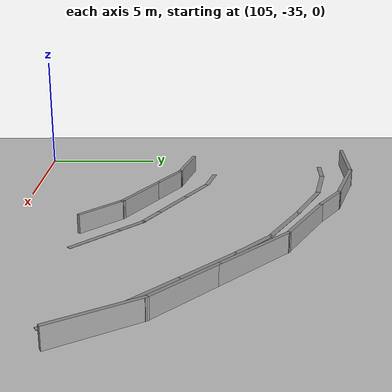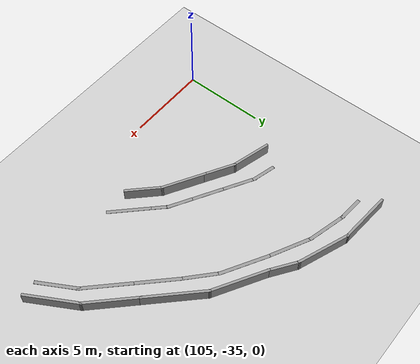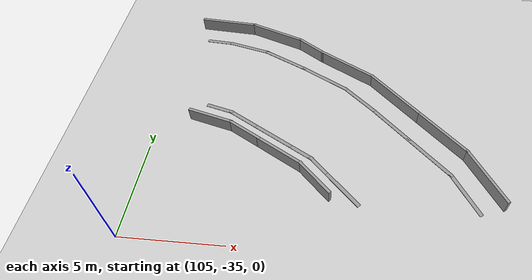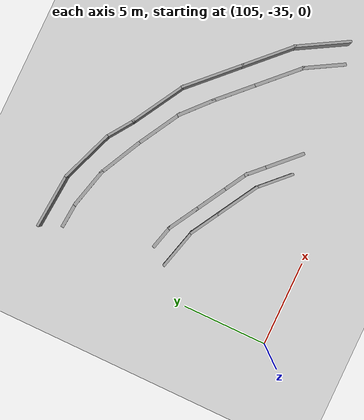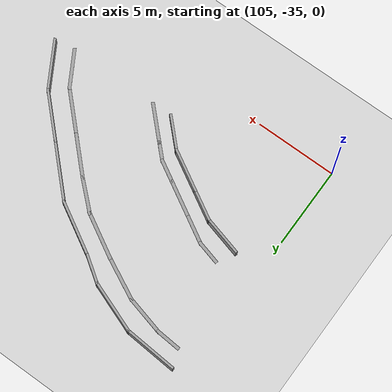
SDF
<sdf version="1.6">
 <world name="default">
  <model name="ground_plane">
   <static>1</static>
   <link name="link">
    <collision name="collision">
     <geometry><plane><normal>0 0 1</normal><size>100 100</size></plane></geometry>
     <surface>
      <contact><collide_bitmask>65535</collide_bitmask></contact>
      <friction><ode><mu>100</mu><mu2>50</mu2></ode></friction>
     </surface>
    </collision>
    <visual name="visual">
     <cast_shadows>0</cast_shadows>
     <geometry><plane><normal>0 0 1</normal><size>100 100</size></plane></geometry>
     <material>
      <script><uri>file://media/materials/scripts/gazebo.material</uri><name>Gazebo/Grey</name></script>
     </material>
    </visual>
   </link>
  </model>
  <model name="GercekDuvarSeritKoyu1">
   <link name="Wall_219">
    <pose>-23.1259 53.6629 0 0 0 -2.35586</pose>
    <inertial>
     <mass>1</mass>
     <inertia><ixx>1</ixx><ixy>0</ixy><ixz>0</ixz><iyy>1</iyy><iyz>0</iyz><izz>1</izz></inertia>
    </inertial>
    <visual name="Wall_219_Visual">
     <pose>0 0 0.375 0 -0 0</pose>
     <geometry><box><size>2.25 0.15 0.75</size></box></geometry>
     <material>
      <script><uri>file://media/materials/scripts/gazebo.material</uri><name>Gazebo/Grey</name></script>
      <ambient>0.5 0.5 0.5 1</ambient>
      <shader type="pixel"><normal_map>__default__</normal_map></shader>
      <diffuse>0.7 0.7 0.7 1</diffuse>
      <specular>0.01 0.01 0.01 1</specular>
      <emissive>0 0 0 1</emissive>
     </material>
     <meta><layer>0</layer></meta>
    </visual>
    <collision name="Wall_219_Collision">
     <pose>0 0 0.375 0 -0 0</pose>
     <geometry><box><size>2.25 0.15 0.75</size></box></geometry>
     <surface>
      <friction>
       <ode><mu>1</mu><mu2>1</mu2><fdir1>0 0 0</fdir1><slip1>0</slip1><slip2>0</slip2></ode>
       <torsional>
        <coefficient>1</coefficient>
        <patch_radius>0</patch_radius>
        <surface_radius>0</surface_radius>
        <use_patch_radius>1</use_patch_radius>
        <ode><slip>0</slip></ode>
       </torsional>
      </friction>
      <bounce><restitution_coefficient>0</restitution_coefficient><threshold>1e+06</threshold></bounce>
      <contact>
       <collide_without_contact>0</collide_without_contact>
       <collide_without_contact_bitmask>1</collide_without_contact_bitmask>
       <collide_bitmask>1</collide_bitmask>
       <ode>
        <soft_cfm>0</soft_cfm>
        <soft_erp>0.2</soft_erp>
        <kp>1e+13</kp>
        <kd>1</kd>
        <max_vel>0.01</max_vel>
        <min_depth>0</min_depth>
       </ode>
       <bullet>
        <split_impulse>1</split_impulse>
        <split_impulse_penetration_threshold>-0.01</split_impulse_penetration_threshold>
        <soft_cfm>0</soft_cfm>
        <soft_erp>0.2</soft_erp>
        <kp>1e+13</kp>
        <kd>1</kd>
       </bullet>
      </contact>
     </surface>
    </collision>
   </link>
   <link name="Wall_220">
    <pose>-24.5179 51.7949 0 0 0 -2.09452</pose>
    <inertial>
     <mass>1</mass>
     <inertia><ixx>1</ixx><ixy>0</ixy><ixz>0</ixz><iyy>1</iyy><iyz>0</iyz><izz>1</izz></inertia>
    </inertial>
    <visual name="Wall_220_Visual">
     <pose>0 0 0.375 0 -0 0</pose>
     <geometry><box><size>2.75 0.15 0.75</size></box></geometry>
     <material>
      <script><uri>file://media/materials/scripts/gazebo.material</uri><name>Gazebo/Grey</name></script>
      <ambient>0.5 0.5 0.5 1</ambient>
      <shader type="pixel"><normal_map>__default__</normal_map></shader>
      <diffuse>0.7 0.7 0.7 1</diffuse>
      <specular>0.01 0.01 0.01 1</specular>
      <emissive>0 0 0 1</emissive>
     </material>
     <meta><layer>0</layer></meta>
    </visual>
    <collision name="Wall_220_Collision">
     <pose>0 0 0.375 0 -0 0</pose>
     <geometry><box><size>2.75 0.15 0.75</size></box></geometry>
     <surface>
      <friction>
       <ode><mu>1</mu><mu2>1</mu2><fdir1>0 0 0</fdir1><slip1>0</slip1><slip2>0</slip2></ode>
       <torsional>
        <coefficient>1</coefficient>
        <patch_radius>0</patch_radius>
        <surface_radius>0</surface_radius>
        <use_patch_radius>1</use_patch_radius>
        <ode><slip>0</slip></ode>
       </torsional>
      </friction>
      <bounce><restitution_coefficient>0</restitution_coefficient><threshold>1e+06</threshold></bounce>
      <contact>
       <collide_without_contact>0</collide_without_contact>
       <collide_without_contact_bitmask>1</collide_without_contact_bitmask>
       <collide_bitmask>1</collide_bitmask>
       <ode>
        <soft_cfm>0</soft_cfm>
        <soft_erp>0.2</soft_erp>
        <kp>1e+13</kp>
        <kd>1</kd>
        <max_vel>0.01</max_vel>
        <min_depth>0</min_depth>
       </ode>
       <bullet>
        <split_impulse>1</split_impulse>
        <split_impulse_penetration_threshold>-0.01</split_impulse_penetration_threshold>
        <soft_cfm>0</soft_cfm>
        <soft_erp>0.2</soft_erp>
        <kp>1e+13</kp>
        <kd>1</kd>
       </bullet>
      </contact>
     </surface>
    </collision>
   </link>
   <link name="Wall_222">
    <pose>-25.6304 49.8684 0 0 0 -2.09443</pose>
    <inertial>
     <mass>1</mass>
     <inertia><ixx>1</ixx><ixy>0</ixy><ixz>0</ixz><iyy>1</iyy><iyz>0</iyz><izz>1</izz></inertia>
    </inertial>
    <visual name="Wall_222_Visual">
     <pose>0 0 0.375 0 -0 0</pose>
     <geometry><box><size>2 0.15 0.75</size></box></geometry>
     <material>
      <script><uri>file://media/materials/scripts/gazebo.material</uri><name>Gazebo/Grey</name></script>
      <ambient>0.5 0.5 0.5 1</ambient>
      <shader type="pixel"><normal_map>__default__</normal_map></shader>
      <diffuse>0.7 0.7 0.7 1</diffuse>
      <specular>0.01 0.01 0.01 1</specular>
      <emissive>0 0 0 1</emissive>
     </material>
     <meta><layer>0</layer></meta>
    </visual>
    <collision name="Wall_222_Collision">
     <pose>0 0 0.375 0 -0 0</pose>
     <geometry><box><size>2 0.15 0.75</size></box></geometry>
     <surface>
      <friction>
       <ode><mu>1</mu><mu2>1</mu2><fdir1>0 0 0</fdir1><slip1>0</slip1><slip2>0</slip2></ode>
       <torsional>
        <coefficient>1</coefficient>
        <patch_radius>0</patch_radius>
        <surface_radius>0</surface_radius>
        <use_patch_radius>1</use_patch_radius>
        <ode><slip>0</slip></ode>
       </torsional>
      </friction>
      <bounce><restitution_coefficient>0</restitution_coefficient><threshold>1e+06</threshold></bounce>
      <contact>
       <collide_without_contact>0</collide_without_contact>
       <collide_without_contact_bitmask>1</collide_without_contact_bitmask>
       <collide_bitmask>1</collide_bitmask>
       <ode>
        <soft_cfm>0</soft_cfm>
        <soft_erp>0.2</soft_erp>
        <kp>1e+13</kp>
        <kd>1</kd>
        <max_vel>0.01</max_vel>
        <min_depth>0</min_depth>
       </ode>
       <bullet>
        <split_impulse>1</split_impulse>
        <split_impulse_penetration_threshold>-0.01</split_impulse_penetration_threshold>
        <soft_cfm>0</soft_cfm>
        <soft_erp>0.2</soft_erp>
        <kp>1e+13</kp>
        <kd>1</kd>
       </bullet>
      </contact>
     </surface>
    </collision>
   </link>
   <link name="Wall_223">
    <pose>-26.3974 47.9324 0 0 0 -1.83291</pose>
    <inertial>
     <mass>1</mass>
     <inertia><ixx>1</ixx><ixy>0</ixy><ixz>0</ixz><iyy>1</iyy><iyz>0</iyz><izz>1</izz></inertia>
    </inertial>
    <visual name="Wall_223_Visual">
     <pose>0 0 0.375 0 -0 0</pose>
     <geometry><box><size>2.5 0.15 0.75</size></box></geometry>
     <material>
      <script><uri>file://media/materials/scripts/gazebo.material</uri><name>Gazebo/Grey</name></script>
      <ambient>0.5 0.5 0.5 1</ambient>
      <shader type="pixel"><normal_map>__default__</normal_map></shader>
      <diffuse>0.7 0.7 0.7 1</diffuse>
      <specular>0.01 0.01 0.01 1</specular>
      <emissive>0 0 0 1</emissive>
     </material>
     <meta><layer>0</layer></meta>
    </visual>
    <collision name="Wall_223_Collision">
     <pose>0 0 0.375 0 -0 0</pose>
     <geometry><box><size>2.5 0.15 0.75</size></box></geometry>
     <surface>
      <friction>
       <ode><mu>1</mu><mu2>1</mu2><fdir1>0 0 0</fdir1><slip1>0</slip1><slip2>0</slip2></ode>
       <torsional>
        <coefficient>1</coefficient>
        <patch_radius>0</patch_radius>
        <surface_radius>0</surface_radius>
        <use_patch_radius>1</use_patch_radius>
        <ode><slip>0</slip></ode>
       </torsional>
      </friction>
      <bounce><restitution_coefficient>0</restitution_coefficient><threshold>1e+06</threshold></bounce>
      <contact>
       <collide_without_contact>0</collide_without_contact>
       <collide_without_contact_bitmask>1</collide_without_contact_bitmask>
       <collide_bitmask>1</collide_bitmask>
       <ode>
        <soft_cfm>0</soft_cfm>
        <soft_erp>0.2</soft_erp>
        <kp>1e+13</kp>
        <kd>1</kd>
        <max_vel>0.01</max_vel>
        <min_depth>0</min_depth>
       </ode>
       <bullet>
        <split_impulse>1</split_impulse>
        <split_impulse_penetration_threshold>-0.01</split_impulse_penetration_threshold>
        <soft_cfm>0</soft_cfm>
        <soft_erp>0.2</soft_erp>
        <kp>1e+13</kp>
        <kd>1</kd>
       </bullet>
      </contact>
     </surface>
    </collision>
   </link>
   <link name="Wall_298">
    <pose>-23.2694 60.8379 0 0 0 -2.61796</pose>
    <visual name="Wall_298_Visual">
     <pose>0 0 0.005 0 -0 0</pose>
     <geometry><box><size>2.55018 0.2 0.01</size></box></geometry>
     <material>
      <script><uri>file://media/materials/scripts/gazebo.material</uri><name>Gazebo/Grey</name></script>
      <ambient>1 1 1 1</ambient>
      <shader type="pixel"/>
     </material>
     <meta><layer>0</layer></meta>
    </visual>
    <collision name="Wall_298_Collision">
     <pose>0 0 0.005 0 -0 0</pose>
     <geometry><box><size>2.55018 0.2 0.01</size></box></geometry>
     <surface>
      <friction>
       <ode><mu>1</mu><mu2>1</mu2><fdir1>0 0 0</fdir1><slip1>0</slip1><slip2>0</slip2></ode>
       <torsional>
        <coefficient>1</coefficient>
        <patch_radius>0</patch_radius>
        <surface_radius>0</surface_radius>
        <use_patch_radius>1</use_patch_radius>
        <ode><slip>0</slip></ode>
       </torsional>
      </friction>
      <bounce><restitution_coefficient>0</restitution_coefficient><threshold>1e+06</threshold></bounce>
      <contact>
       <collide_without_contact>0</collide_without_contact>
       <collide_without_contact_bitmask>1</collide_without_contact_bitmask>
       <collide_bitmask>1</collide_bitmask>
       <ode>
        <soft_cfm>0</soft_cfm>
        <soft_erp>0.2</soft_erp>
        <kp>1e+13</kp>
        <kd>1</kd>
        <max_vel>0.01</max_vel>
        <min_depth>0</min_depth>
       </ode>
       <bullet>
        <split_impulse>1</split_impulse>
        <split_impulse_penetration_threshold>-0.01</split_impulse_penetration_threshold>
        <soft_cfm>0</soft_cfm>
        <soft_erp>0.2</soft_erp>
        <kp>1e+13</kp>
        <kd>1</kd>
       </bullet>
      </contact>
     </surface>
    </collision>
   </link>
   <link name="Wall_299">
    <pose>-25.2949 59.2429 0 0 0 -2.35644</pose>
    <visual name="Wall_299_Visual">
     <pose>0 0 0.005 0 -0 0</pose>
     <geometry><box><size>3.05027 0.2 0.01</size></box></geometry>
     <material>
      <script><uri>file://media/materials/scripts/gazebo.material</uri><name>Gazebo/Grey</name></script>
      <ambient>1 1 1 1</ambient>
      <shader type="pixel"/>
     </material>
     <meta><layer>0</layer></meta>
    </visual>
    <collision name="Wall_299_Collision">
     <pose>0 0 0.005 0 -0 0</pose>
     <geometry><box><size>3.05027 0.2 0.01</size></box></geometry>
     <surface>
      <friction>
       <ode><mu>1</mu><mu2>1</mu2><fdir1>0 0 0</fdir1><slip1>0</slip1><slip2>0</slip2></ode>
       <torsional>
        <coefficient>1</coefficient>
        <patch_radius>0</patch_radius>
        <surface_radius>0</surface_radius>
        <use_patch_radius>1</use_patch_radius>
        <ode><slip>0</slip></ode>
       </torsional>
      </friction>
      <bounce><restitution_coefficient>0</restitution_coefficient><threshold>1e+06</threshold></bounce>
      <contact>
       <collide_without_contact>0</collide_without_contact>
       <collide_without_contact_bitmask>1</collide_without_contact_bitmask>
       <collide_bitmask>1</collide_bitmask>
       <ode>
        <soft_cfm>0</soft_cfm>
        <soft_erp>0.2</soft_erp>
        <kp>1e+13</kp>
        <kd>1</kd>
        <max_vel>0.01</max_vel>
        <min_depth>0</min_depth>
       </ode>
       <bullet>
        <split_impulse>1</split_impulse>
        <split_impulse_penetration_threshold>-0.01</split_impulse_penetration_threshold>
        <soft_cfm>0</soft_cfm>
        <soft_erp>0.2</soft_erp>
        <kp>1e+13</kp>
        <kd>1</kd>
       </bullet>
      </contact>
     </surface>
    </collision>
   </link>
   <link name="Wall_301">
    <pose>-27.2219 57.3159 0 0 0 -2.35592</pose>
    <visual name="Wall_301_Visual">
     <pose>0 0 0.005 0 -0 0</pose>
     <geometry><box><size>2.79992 0.2 0.01</size></box></geometry>
     <material>
      <script><uri>file://media/materials/scripts/gazebo.material</uri><name>Gazebo/Grey</name></script>
      <ambient>1 1 1 1</ambient>
      <shader type="pixel"/>
     </material>
     <meta><layer>0</layer></meta>
    </visual>
    <collision name="Wall_301_Collision">
     <pose>0 0 0.005 0 -0 0</pose>
     <geometry><box><size>2.79992 0.2 0.01</size></box></geometry>
     <surface>
      <friction>
       <ode><mu>1</mu><mu2>1</mu2><fdir1>0 0 0</fdir1><slip1>0</slip1><slip2>0</slip2></ode>
       <torsional>
        <coefficient>1</coefficient>
        <patch_radius>0</patch_radius>
        <surface_radius>0</surface_radius>
        <use_patch_radius>1</use_patch_radius>
        <ode><slip>0</slip></ode>
       </torsional>
      </friction>
      <bounce><restitution_coefficient>0</restitution_coefficient><threshold>1e+06</threshold></bounce>
      <contact>
       <collide_without_contact>0</collide_without_contact>
       <collide_without_contact_bitmask>1</collide_without_contact_bitmask>
       <collide_bitmask>1</collide_bitmask>
       <ode>
        <soft_cfm>0</soft_cfm>
        <soft_erp>0.2</soft_erp>
        <kp>1e+13</kp>
        <kd>1</kd>
        <max_vel>0.01</max_vel>
        <min_depth>0</min_depth>
       </ode>
       <bullet>
        <split_impulse>1</split_impulse>
        <split_impulse_penetration_threshold>-0.01</split_impulse_penetration_threshold>
        <soft_cfm>0</soft_cfm>
        <soft_erp>0.2</soft_erp>
        <kp>1e+13</kp>
        <kd>1</kd>
       </bullet>
      </contact>
     </surface>
    </collision>
   </link>
   <link name="Wall_302">
    <pose>-28.8624 55.6029 0 0 0 -2.3087</pose>
    <visual name="Wall_302_Visual">
     <pose>0 0 0.005 0 -0 0</pose>
     <geometry><box><size>2.34524 0.2 0.01</size></box></geometry>
     <material>
      <script><uri>file://media/materials/scripts/gazebo.material</uri><name>Gazebo/Grey</name></script>
      <ambient>1 1 1 1</ambient>
      <shader type="pixel"/>
     </material>
     <meta><layer>0</layer></meta>
    </visual>
    <collision name="Wall_302_Collision">
     <pose>0 0 0.005 0 -0 0</pose>
     <geometry><box><size>2.34524 0.2 0.01</size></box></geometry>
     <surface>
      <friction>
       <ode><mu>1</mu><mu2>1</mu2><fdir1>0 0 0</fdir1><slip1>0</slip1><slip2>0</slip2></ode>
       <torsional>
        <coefficient>1</coefficient>
        <patch_radius>0</patch_radius>
        <surface_radius>0</surface_radius>
        <use_patch_radius>1</use_patch_radius>
        <ode><slip>0</slip></ode>
       </torsional>
      </friction>
      <bounce><restitution_coefficient>0</restitution_coefficient><threshold>1e+06</threshold></bounce>
      <contact>
       <collide_without_contact>0</collide_without_contact>
       <collide_without_contact_bitmask>1</collide_without_contact_bitmask>
       <collide_bitmask>1</collide_bitmask>
       <ode>
        <soft_cfm>0</soft_cfm>
        <soft_erp>0.2</soft_erp>
        <kp>1e+13</kp>
        <kd>1</kd>
        <max_vel>0.01</max_vel>
        <min_depth>0</min_depth>
       </ode>
       <bullet>
        <split_impulse>1</split_impulse>
        <split_impulse_penetration_threshold>-0.01</split_impulse_penetration_threshold>
        <soft_cfm>0</soft_cfm>
        <soft_erp>0.2</soft_erp>
        <kp>1e+13</kp>
        <kd>1</kd>
       </bullet>
      </contact>
     </surface>
    </collision>
   </link>
   <link name="Wall_303">
    <pose>-30.2849 53.5754 0 0 0 -2.08741</pose>
    <visual name="Wall_303_Visual">
     <pose>0 0 0.005 0 -0 0</pose>
     <geometry><box><size>3.03876 0.2 0.01</size></box></geometry>
     <material>
      <script><uri>file://media/materials/scripts/gazebo.material</uri><name>Gazebo/Grey</name></script>
      <ambient>1 1 1 1</ambient>
      <shader type="pixel"/>
     </material>
     <meta><layer>0</layer></meta>
    </visual>
    <collision name="Wall_303_Collision">
     <pose>0 0 0.005 0 -0 0</pose>
     <geometry><box><size>3.03876 0.2 0.01</size></box></geometry>
     <surface>
      <friction>
       <ode><mu>1</mu><mu2>1</mu2><fdir1>0 0 0</fdir1><slip1>0</slip1><slip2>0</slip2></ode>
       <torsional>
        <coefficient>1</coefficient>
        <patch_radius>0</patch_radius>
        <surface_radius>0</surface_radius>
        <use_patch_radius>1</use_patch_radius>
        <ode><slip>0</slip></ode>
       </torsional>
      </friction>
      <bounce><restitution_coefficient>0</restitution_coefficient><threshold>1e+06</threshold></bounce>
      <contact>
       <collide_without_contact>0</collide_without_contact>
       <collide_without_contact_bitmask>1</collide_without_contact_bitmask>
       <collide_bitmask>1</collide_bitmask>
       <ode>
        <soft_cfm>0</soft_cfm>
        <soft_erp>0.2</soft_erp>
        <kp>1e+13</kp>
        <kd>1</kd>
        <max_vel>0.01</max_vel>
        <min_depth>0</min_depth>
       </ode>
       <bullet>
        <split_impulse>1</split_impulse>
        <split_impulse_penetration_threshold>-0.01</split_impulse_penetration_threshold>
        <soft_cfm>0</soft_cfm>
        <soft_erp>0.2</soft_erp>
        <kp>1e+13</kp>
        <kd>1</kd>
       </bullet>
      </contact>
     </surface>
    </collision>
   </link>
   <link name="Wall_304">
    <pose>-31.5824 51.1524 0 0 0 -2.03579</pose>
    <visual name="Wall_304_Visual">
     <pose>0 0 0.005 0 -0 0</pose>
     <geometry><box><size>2.86057 0.2 0.01</size></box></geometry>
     <material>
      <script><uri>file://media/materials/scripts/gazebo.material</uri><name>Gazebo/Grey</name></script>
      <ambient>1 1 1 1</ambient>
      <shader type="pixel"/>
     </material>
     <meta><layer>0</layer></meta>
    </visual>
    <collision name="Wall_304_Collision">
     <pose>0 0 0.005 0 -0 0</pose>
     <geometry><box><size>2.86057 0.2 0.01</size></box></geometry>
     <surface>
      <friction>
       <ode><mu>1</mu><mu2>1</mu2><fdir1>0 0 0</fdir1><slip1>0</slip1><slip2>0</slip2></ode>
       <torsional>
        <coefficient>1</coefficient>
        <patch_radius>0</patch_radius>
        <surface_radius>0</surface_radius>
        <use_patch_radius>1</use_patch_radius>
        <ode><slip>0</slip></ode>
       </torsional>
      </friction>
      <bounce><restitution_coefficient>0</restitution_coefficient><threshold>1e+06</threshold></bounce>
      <contact>
       <collide_without_contact>0</collide_without_contact>
       <collide_without_contact_bitmask>1</collide_without_contact_bitmask>
       <collide_bitmask>1</collide_bitmask>
       <ode>
        <soft_cfm>0</soft_cfm>
        <soft_erp>0.2</soft_erp>
        <kp>1e+13</kp>
        <kd>1</kd>
        <max_vel>0.01</max_vel>
        <min_depth>0</min_depth>
       </ode>
       <bullet>
        <split_impulse>1</split_impulse>
        <split_impulse_penetration_threshold>-0.01</split_impulse_penetration_threshold>
        <soft_cfm>0</soft_cfm>
        <soft_erp>0.2</soft_erp>
        <kp>1e+13</kp>
        <kd>1</kd>
       </bullet>
      </contact>
     </surface>
    </collision>
   </link>
   <link name="Wall_305">
    <pose>-32.4699 48.8284 0 0 0 -1.82178</pose>
    <visual name="Wall_305_Visual">
     <pose>0 0 0.005 0 -0 0</pose>
     <geometry><box><size>2.54341 0.2 0.01</size></box></geometry>
     <material>
      <script><uri>file://media/materials/scripts/gazebo.material</uri><name>Gazebo/Grey</name></script>
      <ambient>1 1 1 1</ambient>
      <shader type="pixel"/>
     </material>
     <meta><layer>0</layer></meta>
    </visual>
    <collision name="Wall_305_Collision">
     <pose>0 0 0.005 0 -0 0</pose>
     <geometry><box><size>2.54341 0.2 0.01</size></box></geometry>
     <surface>
      <friction>
       <ode><mu>1</mu><mu2>1</mu2><fdir1>0 0 0</fdir1><slip1>0</slip1><slip2>0</slip2></ode>
       <torsional>
        <coefficient>1</coefficient>
        <patch_radius>0</patch_radius>
        <surface_radius>0</surface_radius>
        <use_patch_radius>1</use_patch_radius>
        <ode><slip>0</slip></ode>
       </torsional>
      </friction>
      <bounce><restitution_coefficient>0</restitution_coefficient><threshold>1e+06</threshold></bounce>
      <contact>
       <collide_without_contact>0</collide_without_contact>
       <collide_without_contact_bitmask>1</collide_without_contact_bitmask>
       <collide_bitmask>1</collide_bitmask>
       <ode>
        <soft_cfm>0</soft_cfm>
        <soft_erp>0.2</soft_erp>
        <kp>1e+13</kp>
        <kd>1</kd>
        <max_vel>0.01</max_vel>
        <min_depth>0</min_depth>
       </ode>
       <bullet>
        <split_impulse>1</split_impulse>
        <split_impulse_penetration_threshold>-0.01</split_impulse_penetration_threshold>
        <soft_cfm>0</soft_cfm>
        <soft_erp>0.2</soft_erp>
        <kp>1e+13</kp>
        <kd>1</kd>
       </bullet>
      </contact>
     </surface>
    </collision>
   </link>
   <link name="Wall_307">
    <pose>-32.8174 46.9889 0 0 0 -1.65082</pose>
    <visual name="Wall_307_Visual">
     <pose>0 0 0.005 0 -0 0</pose>
     <geometry><box><size>1.61369 0.2 0.01</size></box></geometry>
     <material>
      <script><uri>file://media/materials/scripts/gazebo.material</uri><name>Gazebo/Grey</name></script>
      <ambient>1 1 1 1</ambient>
      <shader type="pixel"/>
     </material>
     <meta><layer>0</layer></meta>
    </visual>
    <collision name="Wall_307_Collision">
     <pose>0 0 0.005 0 -0 0</pose>
     <geometry><box><size>1.61369 0.2 0.01</size></box></geometry>
     <surface>
      <friction>
       <ode><mu>1</mu><mu2>1</mu2><fdir1>0 0 0</fdir1><slip1>0</slip1><slip2>0</slip2></ode>
       <torsional>
        <coefficient>1</coefficient>
        <patch_radius>0</patch_radius>
        <surface_radius>0</surface_radius>
        <use_patch_radius>1</use_patch_radius>
        <ode><slip>0</slip></ode>
       </torsional>
      </friction>
      <bounce><restitution_coefficient>0</restitution_coefficient><threshold>1e+06</threshold></bounce>
      <contact>
       <collide_without_contact>0</collide_without_contact>
       <collide_without_contact_bitmask>1</collide_without_contact_bitmask>
       <collide_bitmask>1</collide_bitmask>
       <ode>
        <soft_cfm>0</soft_cfm>
        <soft_erp>0.2</soft_erp>
        <kp>1e+13</kp>
        <kd>1</kd>
        <max_vel>0.01</max_vel>
        <min_depth>0</min_depth>
       </ode>
       <bullet>
        <split_impulse>1</split_impulse>
        <split_impulse_penetration_threshold>-0.01</split_impulse_penetration_threshold>
        <soft_cfm>0</soft_cfm>
        <soft_erp>0.2</soft_erp>
        <kp>1e+13</kp>
        <kd>1</kd>
       </bullet>
      </contact>
     </surface>
    </collision>
   </link>
   <link name="Wall_40">
    <pose>-23.9414 61.7534 0 0 0 -2.61805</pose>
    <inertial>
     <mass>1</mass>
     <inertia><ixx>1</ixx><ixy>0</ixy><ixz>0</ixz><iyy>1</iyy><iyz>0</iyz><izz>1</izz></inertia>
    </inertial>
    <visual name="Wall_40_Visual">
     <pose>0 0 0.375 0 -0 0</pose>
     <geometry><box><size>3.25 0.15 0.75</size></box></geometry>
     <material>
      <script><uri>file://media/materials/scripts/gazebo.material</uri><name>Gazebo/Grey</name></script>
      <ambient>0.5 0.5 0.5 1</ambient>
      <shader type="pixel"><normal_map>__default__</normal_map></shader>
      <diffuse>0.7 0.7 0.7 1</diffuse>
      <specular>0.01 0.01 0.01 1</specular>
      <emissive>0 0 0 1</emissive>
     </material>
     <meta><layer>0</layer></meta>
    </visual>
    <collision name="Wall_40_Collision">
     <pose>0 0 0.375 0 -0 0</pose>
     <geometry><box><size>3.25 0.15 0.75</size></box></geometry>
     <surface>
      <friction>
       <ode><mu>1</mu><mu2>1</mu2><fdir1>0 0 0</fdir1><slip1>0</slip1><slip2>0</slip2></ode>
       <torsional>
        <coefficient>1</coefficient>
        <patch_radius>0</patch_radius>
        <surface_radius>0</surface_radius>
        <use_patch_radius>1</use_patch_radius>
        <ode><slip>0</slip></ode>
       </torsional>
      </friction>
      <bounce><restitution_coefficient>0</restitution_coefficient><threshold>1e+06</threshold></bounce>
      <contact>
       <collide_without_contact>0</collide_without_contact>
       <collide_without_contact_bitmask>1</collide_without_contact_bitmask>
       <collide_bitmask>1</collide_bitmask>
       <ode>
        <soft_cfm>0</soft_cfm>
        <soft_erp>0.2</soft_erp>
        <kp>1e+13</kp>
        <kd>1</kd>
        <max_vel>0.01</max_vel>
        <min_depth>0</min_depth>
       </ode>
       <bullet>
        <split_impulse>1</split_impulse>
        <split_impulse_penetration_threshold>-0.01</split_impulse_penetration_threshold>
        <soft_cfm>0</soft_cfm>
        <soft_erp>0.2</soft_erp>
        <kp>1e+13</kp>
        <kd>1</kd>
       </bullet>
      </contact>
     </surface>
    </collision>
   </link>
   <link name="Wall_41">
    <pose>-26.3799 59.8824 0 0 0 -2.35619</pose>
    <inertial>
     <mass>1</mass>
     <inertia><ixx>1</ixx><ixy>0</ixy><ixz>0</ixz><iyy>1</iyy><iyz>0</iyz><izz>1</izz></inertia>
    </inertial>
    <visual name="Wall_41_Visual">
     <pose>0 0 0.375 0 -0 0</pose>
     <geometry><box><size>3.25 0.15 0.75</size></box></geometry>
     <material>
      <script><uri>file://media/materials/scripts/gazebo.material</uri><name>Gazebo/Grey</name></script>
      <ambient>0.5 0.5 0.5 1</ambient>
      <shader type="pixel"><normal_map>__default__</normal_map></shader>
      <diffuse>0.7 0.7 0.7 1</diffuse>
      <specular>0.01 0.01 0.01 1</specular>
      <emissive>0 0 0 1</emissive>
     </material>
     <meta><layer>0</layer></meta>
    </visual>
    <collision name="Wall_41_Collision">
     <pose>0 0 0.375 0 -0 0</pose>
     <geometry><box><size>3.25 0.15 0.75</size></box></geometry>
     <surface>
      <friction>
       <ode><mu>1</mu><mu2>1</mu2><fdir1>0 0 0</fdir1><slip1>0</slip1><slip2>0</slip2></ode>
       <torsional>
        <coefficient>1</coefficient>
        <patch_radius>0</patch_radius>
        <surface_radius>0</surface_radius>
        <use_patch_radius>1</use_patch_radius>
        <ode><slip>0</slip></ode>
       </torsional>
      </friction>
      <bounce><restitution_coefficient>0</restitution_coefficient><threshold>1e+06</threshold></bounce>
      <contact>
       <collide_without_contact>0</collide_without_contact>
       <collide_without_contact_bitmask>1</collide_without_contact_bitmask>
       <collide_bitmask>1</collide_bitmask>
       <ode>
        <soft_cfm>0</soft_cfm>
        <soft_erp>0.2</soft_erp>
        <kp>1e+13</kp>
        <kd>1</kd>
        <max_vel>0.01</max_vel>
        <min_depth>0</min_depth>
       </ode>
       <bullet>
        <split_impulse>1</split_impulse>
        <split_impulse_penetration_threshold>-0.01</split_impulse_penetration_threshold>
        <soft_cfm>0</soft_cfm>
        <soft_erp>0.2</soft_erp>
        <kp>1e+13</kp>
        <kd>1</kd>
       </bullet>
      </contact>
     </surface>
    </collision>
   </link>
   <link name="Wall_42">
    <pose>-28.7489 57.5134 0 0 0 -2.35619</pose>
    <inertial>
     <mass>1</mass>
     <inertia><ixx>1</ixx><ixy>0</ixy><ixz>0</ixz><iyy>1</iyy><iyz>0</iyz><izz>1</izz></inertia>
    </inertial>
    <visual name="Wall_42_Visual">
     <pose>0 0 0.375 0 -0 0</pose>
     <geometry><box><size>3.75 0.15 0.75</size></box></geometry>
     <material>
      <script><uri>file://media/materials/scripts/gazebo.material</uri><name>Gazebo/Grey</name></script>
      <ambient>0.5 0.5 0.5 1</ambient>
      <shader type="pixel"><normal_map>__default__</normal_map></shader>
      <diffuse>0.7 0.7 0.7 1</diffuse>
      <specular>0.01 0.01 0.01 1</specular>
      <emissive>0 0 0 1</emissive>
     </material>
     <meta><layer>0</layer></meta>
    </visual>
    <collision name="Wall_42_Collision">
     <pose>0 0 0.375 0 -0 0</pose>
     <geometry><box><size>3.75 0.15 0.75</size></box></geometry>
     <surface>
      <friction>
       <ode><mu>1</mu><mu2>1</mu2><fdir1>0 0 0</fdir1><slip1>0</slip1><slip2>0</slip2></ode>
       <torsional>
        <coefficient>1</coefficient>
        <patch_radius>0</patch_radius>
        <surface_radius>0</surface_radius>
        <use_patch_radius>1</use_patch_radius>
        <ode><slip>0</slip></ode>
       </torsional>
      </friction>
      <bounce><restitution_coefficient>0</restitution_coefficient><threshold>1e+06</threshold></bounce>
      <contact>
       <collide_without_contact>0</collide_without_contact>
       <collide_without_contact_bitmask>1</collide_without_contact_bitmask>
       <collide_bitmask>1</collide_bitmask>
       <ode>
        <soft_cfm>0</soft_cfm>
        <soft_erp>0.2</soft_erp>
        <kp>1e+13</kp>
        <kd>1</kd>
        <max_vel>0.01</max_vel>
        <min_depth>0</min_depth>
       </ode>
       <bullet>
        <split_impulse>1</split_impulse>
        <split_impulse_penetration_threshold>-0.01</split_impulse_penetration_threshold>
        <soft_cfm>0</soft_cfm>
        <soft_erp>0.2</soft_erp>
        <kp>1e+13</kp>
        <kd>1</kd>
       </bullet>
      </contact>
     </surface>
    </collision>
   </link>
   <link name="Wall_43">
    <pose>-30.8594 54.7899 0 0 0 -2.09442</pose>
    <inertial>
     <mass>1</mass>
     <inertia><ixx>1</ixx><ixy>0</ixy><ixz>0</ixz><iyy>1</iyy><iyz>0</iyz><izz>1</izz></inertia>
    </inertial>
    <visual name="Wall_43_Visual">
     <pose>0 0 0.375 0 -0 0</pose>
     <geometry><box><size>3.5 0.15 0.75</size></box></geometry>
     <material>
      <script><uri>file://media/materials/scripts/gazebo.material</uri><name>Gazebo/Grey</name></script>
      <ambient>0.5 0.5 0.5 1</ambient>
      <shader type="pixel"><normal_map>__default__</normal_map></shader>
      <diffuse>0.7 0.7 0.7 1</diffuse>
      <specular>0.01 0.01 0.01 1</specular>
      <emissive>0 0 0 1</emissive>
     </material>
     <meta><layer>0</layer></meta>
    </visual>
    <collision name="Wall_43_Collision">
     <pose>0 0 0.375 0 -0 0</pose>
     <geometry><box><size>3.5 0.15 0.75</size></box></geometry>
     <surface>
      <friction>
       <ode><mu>1</mu><mu2>1</mu2><fdir1>0 0 0</fdir1><slip1>0</slip1><slip2>0</slip2></ode>
       <torsional>
        <coefficient>1</coefficient>
        <patch_radius>0</patch_radius>
        <surface_radius>0</surface_radius>
        <use_patch_radius>1</use_patch_radius>
        <ode><slip>0</slip></ode>
       </torsional>
      </friction>
      <bounce><restitution_coefficient>0</restitution_coefficient><threshold>1e+06</threshold></bounce>
      <contact>
       <collide_without_contact>0</collide_without_contact>
       <collide_without_contact_bitmask>1</collide_without_contact_bitmask>
       <collide_bitmask>1</collide_bitmask>
       <ode>
        <soft_cfm>0</soft_cfm>
        <soft_erp>0.2</soft_erp>
        <kp>1e+13</kp>
        <kd>1</kd>
        <max_vel>0.01</max_vel>
        <min_depth>0</min_depth>
       </ode>
       <bullet>
        <split_impulse>1</split_impulse>
        <split_impulse_penetration_threshold>-0.01</split_impulse_penetration_threshold>
        <soft_cfm>0</soft_cfm>
        <soft_erp>0.2</soft_erp>
        <kp>1e+13</kp>
        <kd>1</kd>
       </bullet>
      </contact>
     </surface>
    </collision>
   </link>
   <link name="Wall_44">
    <pose>-32.1829 52.6364 0 0 0 -2.17568</pose>
    <inertial>
     <mass>1</mass>
     <inertia><ixx>1</ixx><ixy>0</ixy><ixz>0</ixz><iyy>1</iyy><iyz>0</iyz><izz>1</izz></inertia>
    </inertial>
    <visual name="Wall_44_Visual">
     <pose>0 0 0.375 0 -0 0</pose>
     <geometry><box><size>1.85943 0.15 0.75</size></box></geometry>
     <material>
      <script><uri>file://media/materials/scripts/gazebo.material</uri><name>Gazebo/Grey</name></script>
      <ambient>0.5 0.5 0.5 1</ambient>
      <shader type="pixel"><normal_map>__default__</normal_map></shader>
      <diffuse>0.7 0.7 0.7 1</diffuse>
      <specular>0.01 0.01 0.01 1</specular>
      <emissive>0 0 0 1</emissive>
     </material>
     <meta><layer>0</layer></meta>
    </visual>
    <collision name="Wall_44_Collision">
     <pose>0 0 0.375 0 -0 0</pose>
     <geometry><box><size>1.85943 0.15 0.75</size></box></geometry>
     <surface>
      <friction>
       <ode><mu>1</mu><mu2>1</mu2><fdir1>0 0 0</fdir1><slip1>0</slip1><slip2>0</slip2></ode>
       <torsional>
        <coefficient>1</coefficient>
        <patch_radius>0</patch_radius>
        <surface_radius>0</surface_radius>
        <use_patch_radius>1</use_patch_radius>
        <ode><slip>0</slip></ode>
       </torsional>
      </friction>
      <bounce><restitution_coefficient>0</restitution_coefficient><threshold>1e+06</threshold></bounce>
      <contact>
       <collide_without_contact>0</collide_without_contact>
       <collide_without_contact_bitmask>1</collide_without_contact_bitmask>
       <collide_bitmask>1</collide_bitmask>
       <ode>
        <soft_cfm>0</soft_cfm>
        <soft_erp>0.2</soft_erp>
        <kp>1e+13</kp>
        <kd>1</kd>
        <max_vel>0.01</max_vel>
        <min_depth>0</min_depth>
       </ode>
       <bullet>
        <split_impulse>1</split_impulse>
        <split_impulse_penetration_threshold>-0.01</split_impulse_penetration_threshold>
        <soft_cfm>0</soft_cfm>
        <soft_erp>0.2</soft_erp>
        <kp>1e+13</kp>
        <kd>1</kd>
       </bullet>
      </contact>
     </surface>
    </collision>
   </link>
   <link name="Wall_45">
    <pose>-33.2254 50.4469 0 0 0 -1.92901</pose>
    <inertial>
     <mass>1</mass>
     <inertia><ixx>1</ixx><ixy>0</ixy><ixz>0</ixz><iyy>1</iyy><iyz>0</iyz><izz>1</izz></inertia>
    </inertial>
    <visual name="Wall_45_Visual">
     <pose>0 0 0.375 0 -0 0</pose>
     <geometry><box><size>3.32401 0.15 0.75</size></box></geometry>
     <material>
      <script><uri>file://media/materials/scripts/gazebo.material</uri><name>Gazebo/Grey</name></script>
      <ambient>0.5 0.5 0.5 1</ambient>
      <shader type="pixel"><normal_map>__default__</normal_map></shader>
      <diffuse>0.7 0.7 0.7 1</diffuse>
      <specular>0.01 0.01 0.01 1</specular>
      <emissive>0 0 0 1</emissive>
     </material>
     <meta><layer>0</layer></meta>
    </visual>
    <collision name="Wall_45_Collision">
     <pose>0 0 0.375 0 -0 0</pose>
     <geometry><box><size>3.32401 0.15 0.75</size></box></geometry>
     <surface>
      <friction>
       <ode><mu>1</mu><mu2>1</mu2><fdir1>0 0 0</fdir1><slip1>0</slip1><slip2>0</slip2></ode>
       <torsional>
        <coefficient>1</coefficient>
        <patch_radius>0</patch_radius>
        <surface_radius>0</surface_radius>
        <use_patch_radius>1</use_patch_radius>
        <ode><slip>0</slip></ode>
       </torsional>
      </friction>
      <bounce><restitution_coefficient>0</restitution_coefficient><threshold>1e+06</threshold></bounce>
      <contact>
       <collide_without_contact>0</collide_without_contact>
       <collide_without_contact_bitmask>1</collide_without_contact_bitmask>
       <collide_bitmask>1</collide_bitmask>
       <ode>
        <soft_cfm>0</soft_cfm>
        <soft_erp>0.2</soft_erp>
        <kp>1e+13</kp>
        <kd>1</kd>
        <max_vel>0.01</max_vel>
        <min_depth>0</min_depth>
       </ode>
       <bullet>
        <split_impulse>1</split_impulse>
        <split_impulse_penetration_threshold>-0.01</split_impulse_penetration_threshold>
        <soft_cfm>0</soft_cfm>
        <soft_erp>0.2</soft_erp>
        <kp>1e+13</kp>
        <kd>1</kd>
       </bullet>
      </contact>
     </surface>
    </collision>
   </link>
   <link name="Wall_46">
    <pose>-33.9019 47.3914 0 0 0 -1.64713</pose>
    <inertial>
     <mass>1</mass>
     <inertia><ixx>1</ixx><ixy>0</ixy><ixz>0</ixz><iyy>1</iyy><iyz>0</iyz><izz>1</izz></inertia>
    </inertial>
    <visual name="Wall_46_Visual">
     <pose>0 0 0.375 0 -0 0</pose>
     <geometry><box><size>3.29694 0.15 0.75</size></box></geometry>
     <material>
      <script><uri>file://media/materials/scripts/gazebo.material</uri><name>Gazebo/Grey</name></script>
      <ambient>0.5 0.5 0.5 1</ambient>
      <shader type="pixel"><normal_map>__default__</normal_map></shader>
      <diffuse>0.7 0.7 0.7 1</diffuse>
      <specular>0.01 0.01 0.01 1</specular>
      <emissive>0 0 0 1</emissive>
     </material>
     <meta><layer>0</layer></meta>
    </visual>
    <collision name="Wall_46_Collision">
     <pose>0 0 0.375 0 -0 0</pose>
     <geometry><box><size>3.29694 0.15 0.75</size></box></geometry>
     <surface>
      <friction>
       <ode><mu>1</mu><mu2>1</mu2><fdir1>0 0 0</fdir1><slip1>0</slip1><slip2>0</slip2></ode>
       <torsional>
        <coefficient>1</coefficient>
        <patch_radius>0</patch_radius>
        <surface_radius>0</surface_radius>
        <use_patch_radius>1</use_patch_radius>
        <ode><slip>0</slip></ode>
       </torsional>
      </friction>
      <bounce><restitution_coefficient>0</restitution_coefficient><threshold>1e+06</threshold></bounce>
      <contact>
       <collide_without_contact>0</collide_without_contact>
       <collide_without_contact_bitmask>1</collide_without_contact_bitmask>
       <collide_bitmask>1</collide_bitmask>
       <ode>
        <soft_cfm>0</soft_cfm>
        <soft_erp>0.2</soft_erp>
        <kp>1e+13</kp>
        <kd>1</kd>
        <max_vel>0.01</max_vel>
        <min_depth>0</min_depth>
       </ode>
       <bullet>
        <split_impulse>1</split_impulse>
        <split_impulse_penetration_threshold>-0.01</split_impulse_penetration_threshold>
        <soft_cfm>0</soft_cfm>
        <soft_erp>0.2</soft_erp>
        <kp>1e+13</kp>
        <kd>1</kd>
       </bullet>
      </contact>
     </surface>
    </collision>
   </link>
   <link name="Wall_559">
    <pose>-23.0664 54.9524 0 0 0 -2.35589</pose>
    <visual name="Wall_559_Visual">
     <pose>0 0 0.005 0 -0 0</pose>
     <geometry><box><size>2.54969 0.2 0.01</size></box></geometry>
     <material>
      <script><uri>file://media/materials/scripts/gazebo.material</uri><name>Gazebo/Grey</name></script>
      <ambient>1 1 1 1</ambient>
      <shader type="pixel"/>
     </material>
     <meta><layer>0</layer></meta>
    </visual>
    <collision name="Wall_559_Collision">
     <pose>0 0 0.005 0 -0 0</pose>
     <geometry><box><size>2.54969 0.2 0.01</size></box></geometry>
     <surface>
      <friction>
       <ode><mu>1</mu><mu2>1</mu2><fdir1>0 0 0</fdir1><slip1>0</slip1><slip2>0</slip2></ode>
       <torsional>
        <coefficient>1</coefficient>
        <patch_radius>0</patch_radius>
        <surface_radius>0</surface_radius>
        <use_patch_radius>1</use_patch_radius>
        <ode><slip>0</slip></ode>
       </torsional>
      </friction>
      <bounce><restitution_coefficient>0</restitution_coefficient><threshold>1e+06</threshold></bounce>
      <contact>
       <collide_without_contact>0</collide_without_contact>
       <collide_without_contact_bitmask>1</collide_without_contact_bitmask>
       <collide_bitmask>1</collide_bitmask>
       <ode>
        <soft_cfm>0</soft_cfm>
        <soft_erp>0.2</soft_erp>
        <kp>1e+13</kp>
        <kd>1</kd>
        <max_vel>0.01</max_vel>
        <min_depth>0</min_depth>
       </ode>
       <bullet>
        <split_impulse>1</split_impulse>
        <split_impulse_penetration_threshold>-0.01</split_impulse_penetration_threshold>
        <soft_cfm>0</soft_cfm>
        <soft_erp>0.2</soft_erp>
        <kp>1e+13</kp>
        <kd>1</kd>
       </bullet>
      </contact>
     </surface>
    </collision>
   </link>
   <link name="Wall_563">
    <pose>-24.2859 53.7324 0 0 0 -2.35619</pose>
    <visual name="Wall_563_Visual">
     <pose>0 0 0.005 0 -0 0</pose>
     <geometry><box><size>1.29997 0.2 0.01</size></box></geometry>
     <material>
      <script><uri>file://media/materials/scripts/gazebo.material</uri><name>Gazebo/Grey</name></script>
      <ambient>1 1 1 1</ambient>
      <shader type="pixel"/>
     </material>
     <meta><layer>0</layer></meta>
    </visual>
    <collision name="Wall_563_Collision">
     <pose>0 0 0.005 0 -0 0</pose>
     <geometry><box><size>1.29997 0.2 0.01</size></box></geometry>
     <surface>
      <friction>
       <ode><mu>1</mu><mu2>1</mu2><fdir1>0 0 0</fdir1><slip1>0</slip1><slip2>0</slip2></ode>
       <torsional>
        <coefficient>1</coefficient>
        <patch_radius>0</patch_radius>
        <surface_radius>0</surface_radius>
        <use_patch_radius>1</use_patch_radius>
        <ode><slip>0</slip></ode>
       </torsional>
      </friction>
      <bounce><restitution_coefficient>0</restitution_coefficient><threshold>1e+06</threshold></bounce>
      <contact>
       <collide_without_contact>0</collide_without_contact>
       <collide_without_contact_bitmask>1</collide_without_contact_bitmask>
       <collide_bitmask>1</collide_bitmask>
       <ode>
        <soft_cfm>0</soft_cfm>
        <soft_erp>0.2</soft_erp>
        <kp>1e+13</kp>
        <kd>1</kd>
        <max_vel>0.01</max_vel>
        <min_depth>0</min_depth>
       </ode>
       <bullet>
        <split_impulse>1</split_impulse>
        <split_impulse_penetration_threshold>-0.01</split_impulse_penetration_threshold>
        <soft_cfm>0</soft_cfm>
        <soft_erp>0.2</soft_erp>
        <kp>1e+13</kp>
        <kd>1</kd>
       </bullet>
      </contact>
     </surface>
    </collision>
   </link>
   <link name="Wall_564">
    <pose>-25.0124 52.7589 0 0 0 -2.09444</pose>
    <visual name="Wall_564_Visual">
     <pose>0 0 0.005 0 -0 0</pose>
     <geometry><box><size>1.54963 0.2 0.01</size></box></geometry>
     <material>
      <script><uri>file://media/materials/scripts/gazebo.material</uri><name>Gazebo/Grey</name></script>
      <ambient>1 1 1 1</ambient>
      <shader type="pixel"/>
     </material>
     <meta><layer>0</layer></meta>
    </visual>
    <collision name="Wall_564_Collision">
     <pose>0 0 0.005 0 -0 0</pose>
     <geometry><box><size>1.54963 0.2 0.01</size></box></geometry>
     <surface>
      <friction>
       <ode><mu>1</mu><mu2>1</mu2><fdir1>0 0 0</fdir1><slip1>0</slip1><slip2>0</slip2></ode>
       <torsional>
        <coefficient>1</coefficient>
        <patch_radius>0</patch_radius>
        <surface_radius>0</surface_radius>
        <use_patch_radius>1</use_patch_radius>
        <ode><slip>0</slip></ode>
       </torsional>
      </friction>
      <bounce><restitution_coefficient>0</restitution_coefficient><threshold>1e+06</threshold></bounce>
      <contact>
       <collide_without_contact>0</collide_without_contact>
       <collide_without_contact_bitmask>1</collide_without_contact_bitmask>
       <collide_bitmask>1</collide_bitmask>
       <ode>
        <soft_cfm>0</soft_cfm>
        <soft_erp>0.2</soft_erp>
        <kp>1e+13</kp>
        <kd>1</kd>
        <max_vel>0.01</max_vel>
        <min_depth>0</min_depth>
       </ode>
       <bullet>
        <split_impulse>1</split_impulse>
        <split_impulse_penetration_threshold>-0.01</split_impulse_penetration_threshold>
        <soft_cfm>0</soft_cfm>
        <soft_erp>0.2</soft_erp>
        <kp>1e+13</kp>
        <kd>1</kd>
       </bullet>
      </contact>
     </surface>
    </collision>
   </link>
   <link name="Wall_565">
    <pose>-25.8749 51.2654 0 0 0 -2.09455</pose>
    <visual name="Wall_565_Visual">
     <pose>0 0 0.005 0 -0 0</pose>
     <geometry><box><size>2.29974 0.2 0.01</size></box></geometry>
     <material>
      <script><uri>file://media/materials/scripts/gazebo.material</uri><name>Gazebo/Grey</name></script>
      <ambient>1 1 1 1</ambient>
      <shader type="pixel"/>
     </material>
     <meta><layer>0</layer></meta>
    </visual>
    <collision name="Wall_565_Collision">
     <pose>0 0 0.005 0 -0 0</pose>
     <geometry><box><size>2.29974 0.2 0.01</size></box></geometry>
     <surface>
      <friction>
       <ode><mu>1</mu><mu2>1</mu2><fdir1>0 0 0</fdir1><slip1>0</slip1><slip2>0</slip2></ode>
       <torsional>
        <coefficient>1</coefficient>
        <patch_radius>0</patch_radius>
        <surface_radius>0</surface_radius>
        <use_patch_radius>1</use_patch_radius>
        <ode><slip>0</slip></ode>
       </torsional>
      </friction>
      <bounce><restitution_coefficient>0</restitution_coefficient><threshold>1e+06</threshold></bounce>
      <contact>
       <collide_without_contact>0</collide_without_contact>
       <collide_without_contact_bitmask>1</collide_without_contact_bitmask>
       <collide_bitmask>1</collide_bitmask>
       <ode>
        <soft_cfm>0</soft_cfm>
        <soft_erp>0.2</soft_erp>
        <kp>1e+13</kp>
        <kd>1</kd>
        <max_vel>0.01</max_vel>
        <min_depth>0</min_depth>
       </ode>
       <bullet>
        <split_impulse>1</split_impulse>
        <split_impulse_penetration_threshold>-0.01</split_impulse_penetration_threshold>
        <soft_cfm>0</soft_cfm>
        <soft_erp>0.2</soft_erp>
        <kp>1e+13</kp>
        <kd>1</kd>
       </bullet>
      </contact>
     </surface>
    </collision>
   </link>
   <link name="Wall_566">
    <pose>-26.8624 49.5554 0 0 0 -2.09443</pose>
    <visual name="Wall_566_Visual">
     <pose>0 0 0.005 0 -0 0</pose>
     <geometry><box><size>2.05031 0.2 0.01</size></box></geometry>
     <material>
      <script><uri>file://media/materials/scripts/gazebo.material</uri><name>Gazebo/Grey</name></script>
      <ambient>1 1 1 1</ambient>
      <shader type="pixel"/>
     </material>
     <meta><layer>0</layer></meta>
    </visual>
    <collision name="Wall_566_Collision">
     <pose>0 0 0.005 0 -0 0</pose>
     <geometry><box><size>2.05031 0.2 0.01</size></box></geometry>
     <surface>
      <friction>
       <ode><mu>1</mu><mu2>1</mu2><fdir1>0 0 0</fdir1><slip1>0</slip1><slip2>0</slip2></ode>
       <torsional>
        <coefficient>1</coefficient>
        <patch_radius>0</patch_radius>
        <surface_radius>0</surface_radius>
        <use_patch_radius>1</use_patch_radius>
        <ode><slip>0</slip></ode>
       </torsional>
      </friction>
      <bounce><restitution_coefficient>0</restitution_coefficient><threshold>1e+06</threshold></bounce>
      <contact>
       <collide_without_contact>0</collide_without_contact>
       <collide_without_contact_bitmask>1</collide_without_contact_bitmask>
       <collide_bitmask>1</collide_bitmask>
       <ode>
        <soft_cfm>0</soft_cfm>
        <soft_erp>0.2</soft_erp>
        <kp>1e+13</kp>
        <kd>1</kd>
        <max_vel>0.01</max_vel>
        <min_depth>0</min_depth>
       </ode>
       <bullet>
        <split_impulse>1</split_impulse>
        <split_impulse_penetration_threshold>-0.01</split_impulse_penetration_threshold>
        <soft_cfm>0</soft_cfm>
        <soft_erp>0.2</soft_erp>
        <kp>1e+13</kp>
        <kd>1</kd>
       </bullet>
      </contact>
     </surface>
    </collision>
   </link>
   <link name="Wall_567">
    <pose>-27.4994 48.1024 0 0 0 -1.83231</pose>
    <visual name="Wall_567_Visual">
     <pose>0 0 0.005 0 -0 0</pose>
     <geometry><box><size>1.55047 0.2 0.01</size></box></geometry>
     <material>
      <script><uri>file://media/materials/scripts/gazebo.material</uri><name>Gazebo/Grey</name></script>
      <ambient>1 1 1 1</ambient>
      <shader type="pixel"/>
     </material>
     <meta><layer>0</layer></meta>
    </visual>
    <collision name="Wall_567_Collision">
     <pose>0 0 0.005 0 -0 0</pose>
     <geometry><box><size>1.55047 0.2 0.01</size></box></geometry>
     <surface>
      <friction>
       <ode><mu>1</mu><mu2>1</mu2><fdir1>0 0 0</fdir1><slip1>0</slip1><slip2>0</slip2></ode>
       <torsional>
        <coefficient>1</coefficient>
        <patch_radius>0</patch_radius>
        <surface_radius>0</surface_radius>
        <use_patch_radius>1</use_patch_radius>
        <ode><slip>0</slip></ode>
       </torsional>
      </friction>
      <bounce><restitution_coefficient>0</restitution_coefficient><threshold>1e+06</threshold></bounce>
      <contact>
       <collide_without_contact>0</collide_without_contact>
       <collide_without_contact_bitmask>1</collide_without_contact_bitmask>
       <collide_bitmask>1</collide_bitmask>
       <ode>
        <soft_cfm>0</soft_cfm>
        <soft_erp>0.2</soft_erp>
        <kp>1e+13</kp>
        <kd>1</kd>
        <max_vel>0.01</max_vel>
        <min_depth>0</min_depth>
       </ode>
       <bullet>
        <split_impulse>1</split_impulse>
        <split_impulse_penetration_threshold>-0.01</split_impulse_penetration_threshold>
        <soft_cfm>0</soft_cfm>
        <soft_erp>0.2</soft_erp>
        <kp>1e+13</kp>
        <kd>1</kd>
       </bullet>
      </contact>
     </surface>
    </collision>
   </link>
   <static>1</static>
   <pose>59.9324 -54.7034 -0 0 0 -1.5695</pose>
  </model>
 </world>
</sdf>
